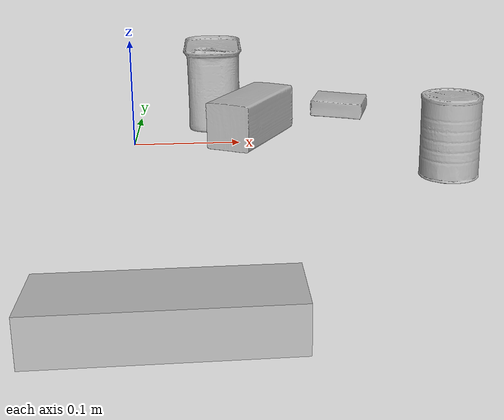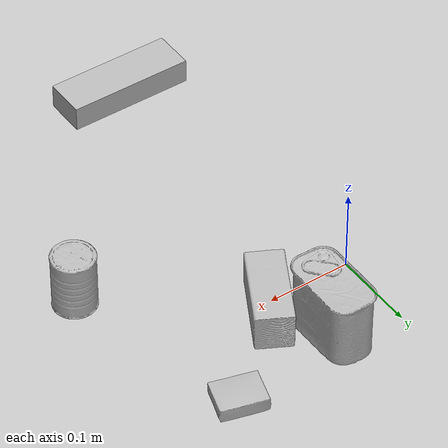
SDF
<sdf version="1.4">
  <world name="default">
    <light name="light1" type="point">
      <pose>0 0 1 0 0 0</pose>
      <diffuse>3 3 3 1</diffuse>
      <specular>3 3 3 1</specular>
    </light>
    <light name="light2" type="point">
      <pose>0 0.5 2 0 0 0</pose>
      <diffuse>1 1 1 1</diffuse>
      <specular>1 1 1 1</specular>
    </light>
    <light name="light3" type="point">
      <pose>0 0.5 2 0 0 0</pose>
      <diffuse>3 3 3 1</diffuse>
      <specular>3 3 3 1</specular>
    </light>
    <scene>
      <ambient>0.7 0.7 0.7</ambient>
    </scene>
    <model name="box1">
      <link name="link_box1">
        <collision name="default">
          <geometry>
            <mesh>
              <uri>model://pudding_box/collision_meshes/collision.obj</uri>
              <scale>0.5 0.5 0.5</scale>
            </mesh>
          </geometry>
          <surface>
            <friction>
              <ode>
                <mu>0.5</mu>
                <mu2>0.5</mu2>
              </ode>
            </friction>
          <contact>
        <ode>
            <max_vel>0</max_vel>
            <min_depth>0.0001</min_depth>
            <kp>1e8</kp>
        </ode>
    </contact></surface>
        </collision>
        <visual name="default">
          <geometry>
            <mesh>
              <uri>model://pudding_box/visual_meshes/visual.dae</uri>
              <scale>0.5 0.5 0.5</scale>
            </mesh>
          </geometry>
        </visual>
        <inertial>
          <mass>0.0642586499452591</mass>
          <pose>0.00024474109522998333 0.00040339428232982755 -0.0002594413817860186 0.005213101302141142 -0.006603800581388343 0.020079827019462423</pose>
          <inertia>
            <ixx>1.8160274e-05</ixx>
            <iyy>1.221836e-05</iyy>
            <izz>2.6818392e-05</izz>
            <ixy>0</ixy>
            <ixz>0</ixz>
            <iyz>0</iyz>
          </inertia>
        </inertial>
      </link>
      <pose>0.21285168826580048 0.10202723741531372 0.009862901642918587 0.022348248242010805 -0.011391871276843567 1.2634659629307308</pose>
    </model>
    <model name="box2">
      <link name="link_box2">
        <collision name="default">
          <geometry>
            <mesh>
              <uri>model://wood_block/collision_meshes/collision.obj</uri>
              <scale>0.5 0.5 0.5</scale>
            </mesh>
          </geometry>
          <surface>
            <friction>
              <ode>
                <mu>0.5</mu>
                <mu2>0.5</mu2>
              </ode>
            </friction>
          <contact>
        <ode>
            <max_vel>0</max_vel>
            <min_depth>0.0001</min_depth>
            <kp>1e8</kp>
        </ode>
    </contact></surface>
        </collision>
        <visual name="default">
          <geometry>
            <mesh>
              <uri>model://wood_block/visual_meshes/visual.dae</uri>
              <scale>0.5 0.5 0.5</scale>
            </mesh>
          </geometry>
        </visual>
        <inertial>
          <mass>0.2432606816291809</mass>
          <pose>-2.9066577553749084e-06 -0.000285404734313488 0.00013204290007706732 -0.0522103103121059 -0.005192696448147362 -0.0068613788455752145</pose>
          <inertia>
            <ixx>8.1379905e-05</ixx>
            <iyy>0.0002570791</iyy>
            <izz>0.00025611752</izz>
            <ixy>0</ixy>
            <ixz>0</ixz>
            <iyz>0</iyz>
          </inertia>
        </inertial>
      </link>
      <pose>0.11238333582878113 0.014494385570287704 0.022656815126538277 -0.0014172581934541926 0.008517108673972729 1.0733962188841653</pose>
    </model>
    <model name="box3">
      <link name="link_box3">
        <collision name="default">
          <geometry>
            <mesh>
              <uri>model://jenga/collision_meshes/collision.obj</uri>
              <scale>1.0 1.0 1.0</scale>
            </mesh>
          </geometry>
          <surface>
            <friction>
              <ode>
                <mu>0.5</mu>
                <mu2>0.5</mu2>
              </ode>
            </friction>
          <contact>
        <ode>
            <max_vel>0</max_vel>
            <min_depth>0.0001</min_depth>
            <kp>1e8</kp>
        </ode>
    </contact></surface>
        </collision>
        <visual name="default">
          <geometry>
            <mesh>
              <uri>model://jenga/visual_meshes/visual.dae</uri>
              <scale>1.0 1.0 1.0</scale>
            </mesh>
          </geometry>
        </visual>
        <inertial>
          <mass>0.20405839383602142</mass>
          <pose>-2.502855807051674e-07 -0.00010250010382151231 -4.0923401684267446e-05 0.0 -7.342155186052628e-07 0.0</pose>
          <inertia>
            <ixx>5.6467907e-05</ixx>
            <iyy>0.000382625</iyy>
            <izz>0.00040848472</izz>
            <ixy>0</ixy>
            <ixz>0</ixz>
            <iyz>0</iyz>
          </inertia>
        </inertial>
      </link>
      <pose>0.04692459851503372 -0.37533819675445557 0.01499999687075615 5.3920079181474054e-08 6.761397143061865e-10 3.1413274637129436</pose>
    </model>
    <model name="can1">
      <link name="link_can1">
        <collision name="default">
          <geometry>
            <mesh>
              <uri>model://potted_meat_can/collision_meshes/collision.obj</uri>
              <scale>1.0 1.0 1.0</scale>
            </mesh>
          </geometry>
          <surface>
            <friction>
              <ode>
                <mu>0.5</mu>
                <mu2>0.5</mu2>
              </ode>
            </friction>
          <contact>
        <ode>
            <max_vel>0</max_vel>
            <min_depth>0.0001</min_depth>
            <kp>1e8</kp>
        </ode>
    </contact></surface>
        </collision>
        <visual name="default">
          <geometry>
            <mesh>
              <uri>model://potted_meat_can/visual_meshes/visual.dae</uri>
              <scale>1.0 1.0 1.0</scale>
            </mesh>
          </geometry>
        </visual>
        <inertial>
          <mass>0.4665880799293518</mass>
          <pose>0.0002288814284838736 -5.989112105453387e-05 -0.0006367449532262981 -0.028093382538733707 -0.007232605550223235 0.01540626728411476</pose>
          <inertia>
            <ixx>0.0006002166</ixx>
            <iyy>0.0003646772</iyy>
            <izz>0.00043654343</izz>
            <ixy>0</ixy>
            <ixz>0</ixz>
            <iyz>0</iyz>
          </inertia>
        </inertial>
      </link>
      <pose>0.07649581879377365 0.07833429425954819 0.04212799668312073 -1.3917244518344683e-06 -1.0949298364057893e-05 -0.01609897342601695</pose>
    </model>
    <model name="can2">
      <link name="link_can2">
        <collision name="default">
          <geometry>
            <mesh>
              <uri>model://master_chef_can/collision_meshes/collision.obj</uri>
              <scale>0.5 0.5 0.5</scale>
            </mesh>
          </geometry>
          <surface>
            <friction>
              <ode>
                <mu>0.5</mu>
                <mu2>0.5</mu2>
              </ode>
            </friction>
          <contact>
        <ode>
            <max_vel>0</max_vel>
            <min_depth>0.0001</min_depth>
            <kp>1e8</kp>
        </ode>
    </contact></surface>
        </collision>
        <visual name="default">
          <geometry>
            <mesh>
              <uri>model://master_chef_can/visual_meshes/visual.dae</uri>
              <scale>0.5 0.5 0.5</scale>
            </mesh>
          </geometry>
        </visual>
        <inertial>
          <mass>0.1648906171321869</mass>
          <pose>-4.661964703700505e-05 1.3926853625889635e-07 -5.079993206891231e-05 -0.0017995099244119924 0.0006479308957776391 -0.6102586503741109</pose>
          <inertia>
            <ixx>9.677961e-05</ixx>
            <iyy>9.606731e-05</iyy>
            <izz>5.3478136e-05</izz>
            <ixy>0</ixy>
            <ixz>0</ixz>
            <iyz>0</iyz>
          </inertia>
        </inertial>
      </link>
      <pose>0.27360132336616516 -0.11737050861120224 0.035301998257637024 -1.5344419168964206e-06 -1.2315528940476731e-06 2.6059140424110354</pose>
    </model>
  <physics type="ode">
      <max_contacts>50</max_contacts>
      <ode>
        <solver>
          <type>quick</type>
          <iters>75</iters>
        </solver>
        <constraints>
          <contact_max_correcting_vel>0</contact_max_correcting_vel>
          <contact_surface_layer>0</contact_surface_layer>
        </constraints>
      </ode>
    </physics></world>
</sdf>
